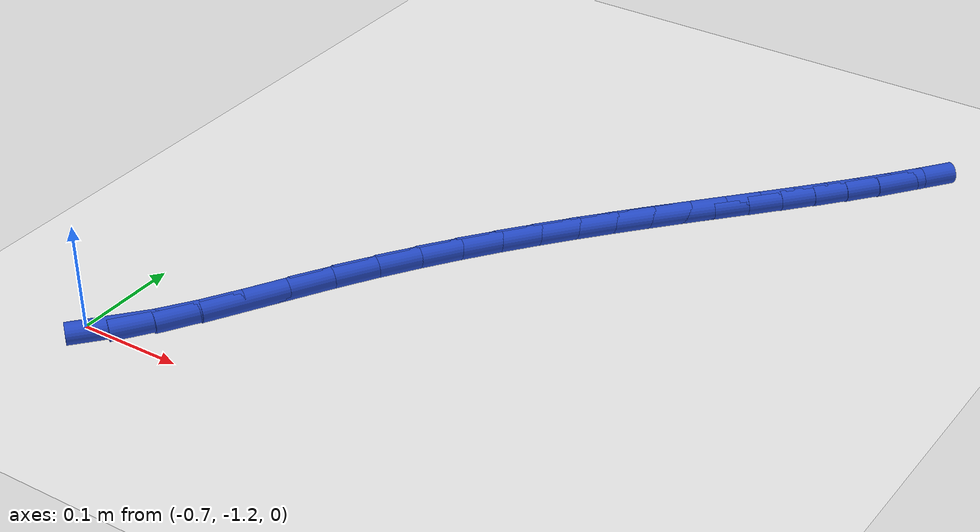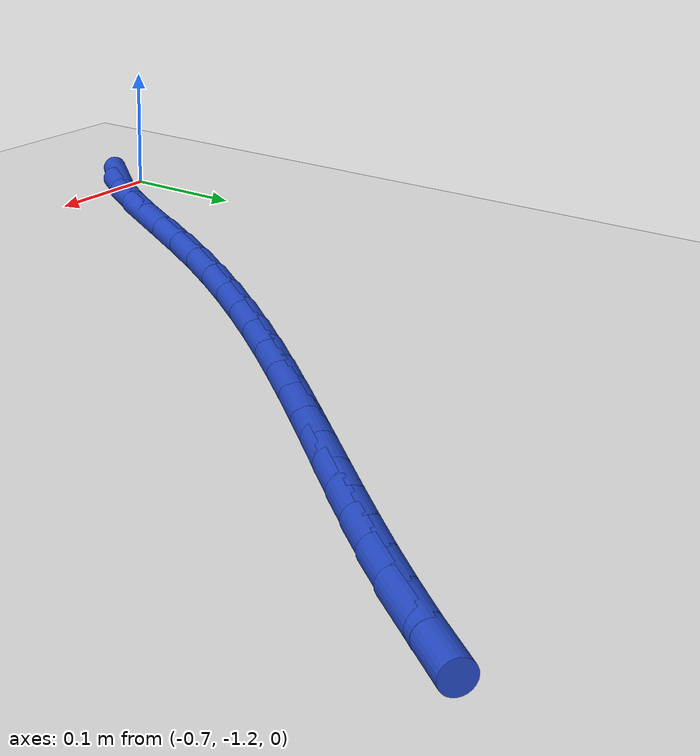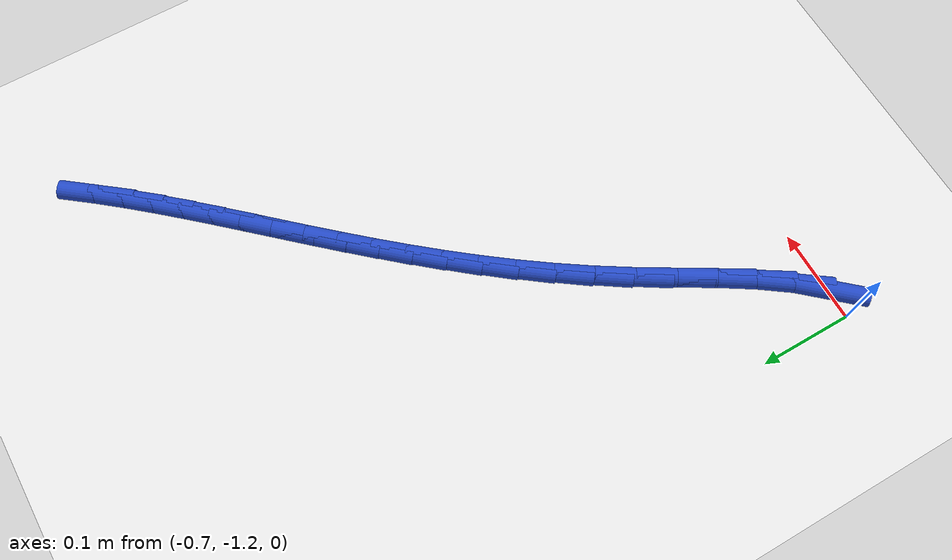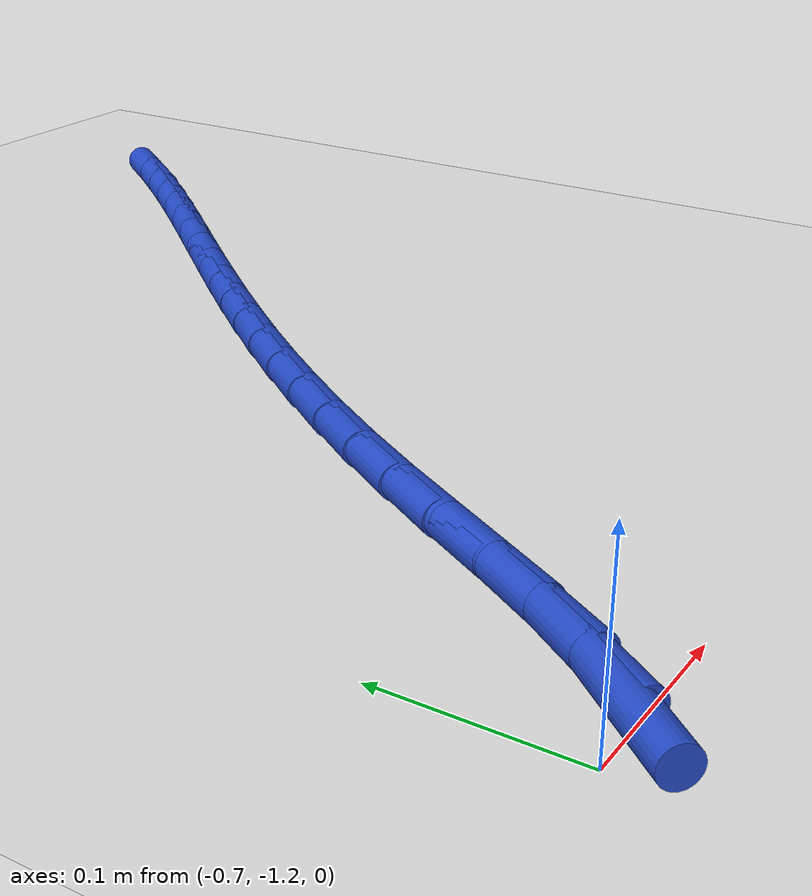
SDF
<sdf version="1.6">
 <world name="default">
  <model name="ground_plane">
   <static>1</static>
   <link name="link">
    <collision name="collision">
     <geometry><plane><normal>0 0 1</normal><size>100 100</size></plane></geometry>
     <surface><friction><ode><mu>100</mu><mu2>50</mu2></ode></friction></surface>
    </collision>
    <visual name="visual">
     <cast_shadows>0</cast_shadows>
     <geometry><plane><normal>0 0 1</normal><size>100 100</size></plane></geometry>
     <material>
      <script><uri>file://media/materials/scripts/gazebo.material</uri><name>Gazebo/WhiteGlow</name></script>
     </material>
    </visual>
   </link>
  </model>
  <model name="line">
   <link name="link_220">
    <pose>-0.6694537577106061 -1.1977495443622947 0.01 0 1.57 0.8469959301672363</pose>
    <collision name="collision">
     <geometry><cylinder><radius>0.01</radius><length>0.08</length></cylinder></geometry>
    </collision>
    <visual name="visual">
     <material>
      <script><name>Gazebo/Blue</name><uri>file://media/materials/scripts/gazebo.material</uri></script>
     </material>
     <geometry><cylinder><radius>0.01</radius><length>0.08</length></cylinder></geometry>
    </visual>
   </link>
   <link name="link_221">
    <pose>-0.6460819710505198 -1.171305315506795 0.01 0 1.57 0.9513134814421016</pose>
    <collision name="collision">
     <geometry><cylinder><radius>0.01</radius><length>0.08</length></cylinder></geometry>
    </collision>
    <visual name="visual">
     <material>
      <script><name>Gazebo/Blue</name><uri>file://media/materials/scripts/gazebo.material</uri></script>
     </material>
     <geometry><cylinder><radius>0.01</radius><length>0.08</length></cylinder></geometry>
    </visual>
   </link>
   <link name="link_222">
    <pose>-0.6238223650648236 -1.1400913000931372 0.01 0 1.57 1.0110528479462353</pose>
    <collision name="collision">
     <geometry><cylinder><radius>0.01</radius><length>0.08</length></cylinder></geometry>
    </collision>
    <visual name="visual">
     <material>
      <script><name>Gazebo/Blue</name><uri>file://media/materials/scripts/gazebo.material</uri></script>
     </material>
     <geometry><cylinder><radius>0.01</radius><length>0.08</length></cylinder></geometry>
    </visual>
   </link>
   <link name="link_223">
    <pose>-0.602283543777384 -1.1057167581589247 0.01 0 1.57 1.037489595444322</pose>
    <collision name="collision">
     <geometry><cylinder><radius>0.01</radius><length>0.08</length></cylinder></geometry>
    </collision>
    <visual name="visual">
     <material>
      <script><name>Gazebo/Blue</name><uri>file://media/materials/scripts/gazebo.material</uri></script>
     </material>
     <geometry><cylinder><radius>0.01</radius><length>0.08</length></cylinder></geometry>
    </visual>
   </link>
   <link name="link_224">
    <pose>-0.581074111212067 -1.06979094974176 0.01 0 1.57 1.0355021285368862</pose>
    <collision name="collision">
     <geometry><cylinder><radius>0.01</radius><length>0.08</length></cylinder></geometry>
    </collision>
    <visual name="visual">
     <material>
      <script><name>Gazebo/Blue</name><uri>file://media/materials/scripts/gazebo.material</uri></script>
     </material>
     <geometry><cylinder><radius>0.01</radius><length>0.08</length></cylinder></geometry>
    </visual>
   </link>
   <link name="link_225">
    <pose>-0.5598026713927386 -1.033923134879246 0.01 0 1.57 1.009566503929569</pose>
    <collision name="collision">
     <geometry><cylinder><radius>0.01</radius><length>0.08</length></cylinder></geometry>
    </collision>
    <visual name="visual">
     <material>
      <script><name>Gazebo/Blue</name><uri>file://media/materials/scripts/gazebo.material</uri></script>
     </material>
     <geometry><cylinder><radius>0.01</radius><length>0.08</length></cylinder></geometry>
    </visual>
   </link>
   <link name="link_226">
    <pose>-0.5381442158577858 -0.9994715793409403 0.01 0 1.57 0.9791980638680283</pose>
    <collision name="collision">
     <geometry><cylinder><radius>0.01</radius><length>0.08</length></cylinder></geometry>
    </collision>
    <visual name="visual">
     <material>
      <script><name>Gazebo/Blue</name><uri>file://media/materials/scripts/gazebo.material</uri></script>
     </material>
     <geometry><cylinder><radius>0.01</radius><length>0.08</length></cylinder></geometry>
    </visual>
   </link>
   <link name="link_227">
    <pose>-0.5160809356052637 -0.9666331060546285 0.01 0 1.57 0.9506722293530719</pose>
    <collision name="collision">
     <geometry><cylinder><radius>0.01</radius><length>0.08</length></cylinder></geometry>
    </collision>
    <visual name="visual">
     <material>
      <script><name>Gazebo/Blue</name><uri>file://media/materials/scripts/gazebo.material</uri></script>
     </material>
     <geometry><cylinder><radius>0.01</radius><length>0.08</length></cylinder></geometry>
    </visual>
   </link>
   <link name="link_228">
    <pose>-0.4936838168934316 -0.9352688257060889 0.01 0 1.57 0.9243562016184713</pose>
    <collision name="collision">
     <geometry><cylinder><radius>0.01</radius><length>0.08</length></cylinder></geometry>
    </collision>
    <visual name="visual">
     <material>
      <script><name>Gazebo/Blue</name><uri>file://media/materials/scripts/gazebo.material</uri></script>
     </material>
     <geometry><cylinder><radius>0.01</radius><length>0.08</length></cylinder></geometry>
    </visual>
   </link>
   <link name="link_229">
    <pose>-0.47102385477171294 -0.9052398157439508 0.01 0 1.57 0.9006042922955313</pose>
    <collision name="collision">
     <geometry><cylinder><radius>0.01</radius><length>0.08</length></cylinder></geometry>
    </collision>
    <visual name="visual">
     <material>
      <script><name>Gazebo/Blue</name><uri>file://media/materials/scripts/gazebo.material</uri></script>
     </material>
     <geometry><cylinder><radius>0.01</radius><length>0.08</length></cylinder></geometry>
    </visual>
   </link>
   <link name="link_230">
    <pose>-0.4481720442895324 -0.876407153616846 0.01 0 1.57 0.8797530497439908</pose>
    <collision name="collision">
     <geometry><cylinder><radius>0.01</radius><length>0.08</length></cylinder></geometry>
    </collision>
    <visual name="visual">
     <material>
      <script><name>Gazebo/Blue</name><uri>file://media/materials/scripts/gazebo.material</uri></script>
     </material>
     <geometry><cylinder><radius>0.01</radius><length>0.08</length></cylinder></geometry>
    </visual>
   </link>
   <link name="link_231">
    <pose>-0.42519938049631284 -0.8486319167734033 0.01 0 1.57 0.8621171628854155</pose>
    <collision name="collision">
     <geometry><cylinder><radius>0.01</radius><length>0.08</length></cylinder></geometry>
    </collision>
    <visual name="visual">
     <material>
      <script><name>Gazebo/Blue</name><uri>file://media/materials/scripts/gazebo.material</uri></script>
     </material>
     <geometry><cylinder><radius>0.01</radius><length>0.08</length></cylinder></geometry>
    </visual>
   </link>
   <link name="link_232">
    <pose>-0.40217685844147816 -0.821775182662253 0.01 0 1.57 0.8479866472687985</pose>
    <collision name="collision">
     <geometry><cylinder><radius>0.01</radius><length>0.08</length></cylinder></geometry>
    </collision>
    <visual name="visual">
     <material>
      <script><name>Gazebo/Blue</name><uri>file://media/materials/scripts/gazebo.material</uri></script>
     </material>
     <geometry><cylinder><radius>0.01</radius><length>0.08</length></cylinder></geometry>
    </visual>
   </link>
   <link name="link_233">
    <pose>-0.37917547317445166 -0.7956980287320243 0.01 0 1.57 0.8376249809295169</pose>
    <collision name="collision">
     <geometry><cylinder><radius>0.01</radius><length>0.08</length></cylinder></geometry>
    </collision>
    <visual name="visual">
     <material>
      <script><name>Gazebo/Blue</name><uri>file://media/materials/scripts/gazebo.material</uri></script>
     </material>
     <geometry><cylinder><radius>0.01</radius><length>0.08</length></cylinder></geometry>
    </visual>
   </link>
   <link name="link_234">
    <pose>-0.356266219744657 -0.7702615324313477 0.01 0 1.57 0.8312676845950207</pose>
    <collision name="collision">
     <geometry><cylinder><radius>0.01</radius><length>0.08</length></cylinder></geometry>
    </collision>
    <visual name="visual">
     <material>
      <script><name>Gazebo/Blue</name><uri>file://media/materials/scripts/gazebo.material</uri></script>
     </material>
     <geometry><cylinder><radius>0.01</radius><length>0.08</length></cylinder></geometry>
    </visual>
   </link>
   <link name="link_235">
    <pose>-0.33352009320151765 -0.7453267712088527 0.01 0 1.57 0.8291207299490546</pose>
    <collision name="collision">
     <geometry><cylinder><radius>0.01</radius><length>0.08</length></cylinder></geometry>
    </collision>
    <visual name="visual">
     <material>
      <script><name>Gazebo/Blue</name><uri>file://media/materials/scripts/gazebo.material</uri></script>
     </material>
     <geometry><cylinder><radius>0.01</radius><length>0.08</length></cylinder></geometry>
    </visual>
   </link>
   <link name="link_236">
    <pose>-0.3110080885944568 -0.7207548225131686 0.01 0 1.57 0.8313581191783596</pose>
    <collision name="collision">
     <geometry><cylinder><radius>0.01</radius><length>0.08</length></cylinder></geometry>
    </collision>
    <visual name="visual">
     <material>
      <script><name>Gazebo/Blue</name><uri>file://media/materials/scripts/gazebo.material</uri></script>
     </material>
     <geometry><cylinder><radius>0.01</radius><length>0.08</length></cylinder></geometry>
    </visual>
   </link>
   <link name="link_237">
    <pose>-0.28880120097289924 -0.696406763792927 0.01 0 1.57 0.8381180155324716</pose>
    <collision name="collision">
     <geometry><cylinder><radius>0.01</radius><length>0.08</length></cylinder></geometry>
    </collision>
    <visual name="visual">
     <material>
      <script><name>Gazebo/Blue</name><uri>file://media/materials/scripts/gazebo.material</uri></script>
     </material>
     <geometry><cylinder><radius>0.01</radius><length>0.08</length></cylinder></geometry>
    </visual>
   </link>
   <link name="link_238">
    <pose>-0.2669704253862677 -0.6721436724967564 0.01 0 1.57 0.8494969289347077</pose>
    <collision name="collision">
     <geometry><cylinder><radius>0.01</radius><length>0.08</length></cylinder></geometry>
    </collision>
    <visual name="visual">
     <material>
      <script><name>Gazebo/Blue</name><uri>file://media/materials/scripts/gazebo.material</uri></script>
     </material>
     <geometry><cylinder><radius>0.01</radius><length>0.08</length></cylinder></geometry>
    </visual>
   </link>
   <link name="link_239">
    <pose>-0.24558675688398612 -0.6478266260732876 0.01 0 1.57 0.8655416902499553</pose>
    <collision name="collision">
     <geometry><cylinder><radius>0.01</radius><length>0.08</length></cylinder></geometry>
    </collision>
    <visual name="visual">
     <material>
      <script><name>Gazebo/Blue</name><uri>file://media/materials/scripts/gazebo.material</uri></script>
     </material>
     <geometry><cylinder><radius>0.01</radius><length>0.08</length></cylinder></geometry>
    </visual>
   </link>
   <link name="link_240">
    <pose>-0.22472119051547781 -0.6233167019711495 0.01 0 1.57 0.8862393029991131</pose>
    <collision name="collision">
     <geometry><cylinder><radius>0.01</radius><length>0.08</length></cylinder></geometry>
    </collision>
    <visual name="visual">
     <material>
      <script><name>Gazebo/Blue</name><uri>file://media/materials/scripts/gazebo.material</uri></script>
     </material>
     <geometry><cylinder><radius>0.01</radius><length>0.08</length></cylinder></geometry>
    </visual>
   </link>
   <link name="link_241">
    <pose>-0.20444472133016647 -0.5984749776389728 0.01 0 1.57 0.9115052528516002</pose>
    <collision name="collision">
     <geometry><cylinder><radius>0.01</radius><length>0.08</length></cylinder></geometry>
    </collision>
    <visual name="visual">
     <material>
      <script><name>Gazebo/Blue</name><uri>file://media/materials/scripts/gazebo.material</uri></script>
     </material>
     <geometry><cylinder><radius>0.01</radius><length>0.08</length></cylinder></geometry>
    </visual>
   </link>
  </model>
 </world>
</sdf>
